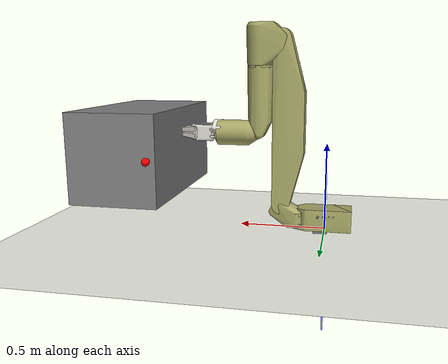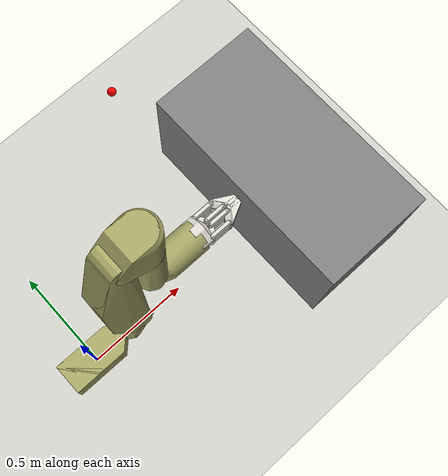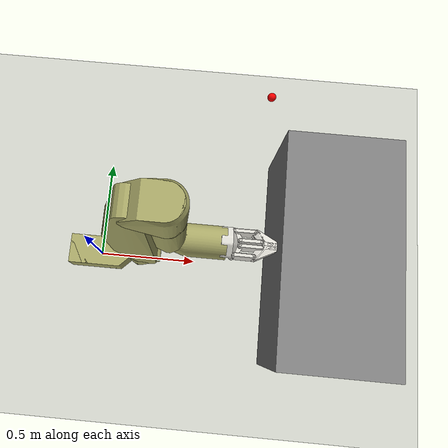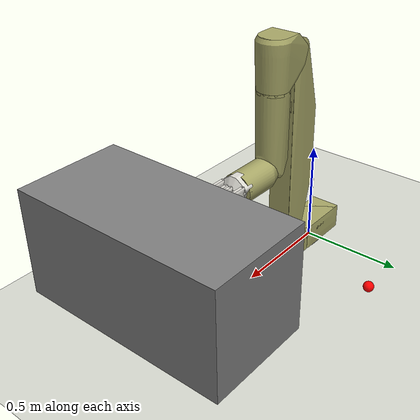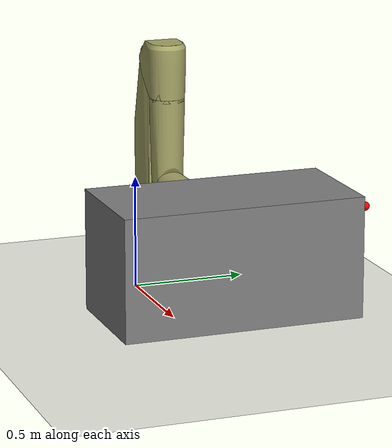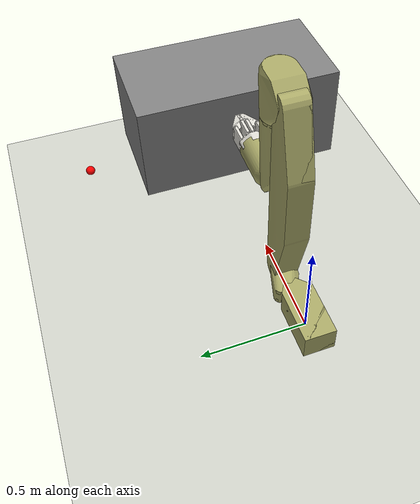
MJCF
<mujoco>

	<include file="shared.xml"></include>
    <include file="actuator.xml" />

	<worldbody>
		<geom name="floor0" pos="0.8 0.75 0" size="1.85 1.7 1.5" type="plane" condim="3" ></geom>
		<body name="floor0" pos="0.8 0.75 0">
			<site name="target0" pos="0 0 0.5" size="0.02 0.02 0.02" rgba="1 0 0 1" type="sphere"></site>
		</body>

		<include file="robot.xml"></include>

		<body pos="1.1 -0. 0.45" name="table0">
			<geom size="0.25 0.5 0.25" type="box" mass="2000" group="0" condim="4"></geom>
			<geom size="0.25 0.5 0.25" type="box" mass="2000" group="1" ></geom>
		</body>

		<camera name="fixed" pos="0 -0.7 0.7" zaxis="0 -1 1" fovy="45" ipd="0.068"/>
        <light directional="true" ambient="0.2 0.2 0.2" diffuse="0.8 0.8 0.8" specular="0.3 0.3 0.3" castshadow="false" pos="0 0 4" dir="0 0 -1" name="light0"></light>

		<body name="object0" pos="0.025 0.025 0.025">
			<joint name="object0:joint" type="free" damping="0.01"></joint>
			<geom size="0.04 0.04 0.04" type="box" contype='0' conaffinity='0' margin='0.001' solimp='0.99 0.99 0.01' solref='0.01 1' condim="4" name="object0_visual"  mass="2" group="1" friction="1 .001 .001" ></geom>
			<geom size="0.04 0.04 0.04" type="box" contype='1' conaffinity='1' margin='0.001' solimp='0.99 0.99 0.01' solref='0.01 1' condim="4" name="object0_collision"  mass="2" group="0" friction="1 .001 .001" ></geom>

			<site name="object0" pos="0 0 0" size="0.02 0.02 0.02" rgba="1 0 0 1" type="sphere"></site>
		</body>

	</worldbody>

</mujoco>

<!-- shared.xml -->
<mujoco model="sia_7f_arm">

    <compiler angle="radian" meshdir="../stls/sia_7f_arm" />

    <option timestep="2e-3"
        iterations="10"
        tolerance="1e-10"
        impratio="300"
        gravity="0 0 -9.81"
        cone="elliptic"
        solver="PGS" />

    <size njmax="600" nconmax="150" nstack="300000"/>

    <asset>
        <mesh name="sia_7f_base_link" file="sia_7f_base_link.STL" />
        <mesh name="sia_7f_base_link_collision" file="sia_7f_base_link_collision.stl" />
        <mesh name="sia_7f_link1" file="sia_7f_link1.STL" />
        <mesh name="sia_7f_link1_collision" file="sia_7f_link1_collision.stl" />
        <mesh name="sia_7f_link2" file="sia_7f_link2.STL" />
        <mesh name="sia_7f_link2_collision" file="sia_7f_link2_collision.stl" />
        <mesh name="sia_7f_link3" file="sia_7f_link3.STL" />
        <mesh name="sia_7f_link3_collision" file="sia_7f_link3_collision.stl" />
        <mesh name="sia_7f_link4" file="sia_7f_link4.STL" />
        <mesh name="sia_7f_link4_collision" file="sia_7f_link4_collision.stl" />
        <mesh name="sia_7f_link5" file="sia_7f_link5.STL" />
        <mesh name="sia_7f_link5_collision" file="sia_7f_link5_collision.stl" />
        <mesh name="sia_7f_gripper" file="sia_7f_gripper.STL" />
        <mesh name="sia_7f_gripper_collision" file="sia_7f_gripper_collision.stl" />
        <mesh name="7f_gripper_left_inner_knuckle" file="7f_gripper_left_inner_knuckle.STL" />
        <mesh name="7f_gripper_left_inner_knuckle_collision" file="7f_gripper_left_inner_knuckle_collision.stl" />
        <mesh name="7f_gripper_left_outer_finger" file="7f_gripper_left_outer_finger.STL" />
        <mesh name="7f_gripper_left_outer_finger_collision" file="7f_gripper_left_outer_finger_collision.stl" />
        <mesh name="7f_gripper_left_inner_finger" file="7f_gripper_left_inner_finger.STL" />
        <mesh name="7f_gripper_left_inner_finger_collision" file="7f_gripper_left_inner_finger_collision.stl" />
        <mesh name="7f_gripper_right_inner_knuckle" file="7f_gripper_right_inner_knuckle.STL" />
        <mesh name="7f_gripper_right_inner_knuckle_collision" file="7f_gripper_right_inner_knuckle_collision.stl" />
        <mesh name="7f_gripper_right_outer_finger" file="7f_gripper_right_outer_finger.STL" />
        <mesh name="7f_gripper_right_outer_finger_collision" file="7f_gripper_right_outer_finger_collision.stl" />
        <mesh name="7f_gripper_right_inner_finger" file="7f_gripper_right_inner_finger.STL" />
        <mesh name="7f_gripper_right_inner_finger_collision" file="7f_gripper_right_inner_finger_collision.stl" />
    </asset>

    <visual>
        <map fogstart="3" fogend="5" force="0.1" znear="0.1"/>
        <quality shadowsize="2048" offsamples="8"/>
        <global offwidth="800" offheight="800"/>
    </visual>

    <default>
        <!-- for collision detection -->
        <default class="GRIPPER">
            <joint armature="0.001" damping='1.0'/>
            <geom rgba="0.863 0.855 0.824 1.0" contype='1' conaffinity='1' margin="0.001" solimp="0.99 0.99 0.01" solref="0.01 1" group="0" condim="4" type='mesh'/>
            <!-- for visualization, no colision detection -->
        </default>

        <default class="ARM">
            <joint armature="0.001" damping='1.0'/>
            <geom rgba="0.658824 0.654902 0.403922 1" contype='1' conaffinity='1' margin="0.001" solimp="0.99 0.99 0.01" solref="0.01 1" group="0" condim="4" type='mesh'/>
            <!-- for visualization, no colision detection -->
        </default>
    </default>

    <equality>
        <weld body2="gripper_r:mocap" body1="r_gripper_palm_link" solimp="0.9 0.95 0.001" solref="0.02 1"></weld>
    </equality>

    <equality>
        <connect body1="7f_gripper_left_inner_knuckle" body2="7f_gripper_left_inner_finger" anchor="0. -0.09 0."/>
        <connect body1="7f_gripper_right_inner_knuckle" body2="7f_gripper_right_inner_finger" anchor="0. -0.09 0."/>
    </equality>

    <contact>
        <exclude body1="r_gripper_palm_link" body2="7f_gripper_left_inner_knuckle"/>
        <exclude body1="r_gripper_palm_link" body2="7f_gripper_left_outer_finger"/>
        <exclude body1="r_gripper_palm_link" body2="7f_gripper_right_inner_knuckle"/>
        <exclude body1="r_gripper_palm_link" body2="7f_gripper_right_outer_finger"/>
        <exclude body1="r_gripper_palm_link" body2="7f_gripper_left_inner_finger"/>
        <exclude body1="r_gripper_palm_link" body2="7f_gripper_right_inner_finger"/>
        <exclude body1="7f_gripper_left_outer_finger" body2="7f_gripper_left_inner_finger"/>
        <exclude body1="7f_gripper_right_outer_finger" body2="7f_gripper_right_inner_finger"/>
        <exclude body1="7f_gripper_left_inner_knuckle" body2="7f_gripper_left_inner_finger"/>
        <exclude body1="7f_gripper_right_inner_knuckle" body2="7f_gripper_right_inner_finger"/>

        <exclude body1="sia_7f_base_link" body2="sia_7f_link1" />
        <exclude body1="sia_7f_link1" body2="sia_7f_link2" />
        <exclude body1="sia_7f_link2" body2="sia_7f_link3" />
        <exclude body1="sia_7f_link3" body2="sia_7f_link4" />
        <exclude body1="sia_7f_link4" body2="sia_7f_link5" />
        <exclude body1="sia_7f_link5" body2="r_gripper_palm_link" />
    </contact>

</mujoco>

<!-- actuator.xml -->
<mujoco>
  <actuator>

        <position ctrllimited="true" ctrlrange="-1.57 1.57" joint="7f_gripper_left_inner_knuckle_joint" kp="10" name="left_inner_knuckle_joint" forcelimited="true" forcerange="-20 20"/>
        <position ctrllimited="true" ctrlrange="-1.57 1.5707" joint="sia_7f_finger_joint" kp="10" name="sia_7f_finger_joint" forcelimited="true" forcerange="-20 20"/>
        <position ctrllimited="true" ctrlrange="-1.57 1.5707" joint="7f_gripper_left_inner_finger_joint" kp="10" name="left_inner_finger_joint" forcelimited="true" forcerange="-20 20"/>

        <position ctrllimited="true" ctrlrange="-1.57 1.5707" joint="7f_gripper_right_inner_knuckle_joint" kp="10" name="right_inner_knuckle_joint" forcelimited="true" forcerange="-20 20"/>
        <position ctrllimited="true" ctrlrange="-1.57 1.5707" joint="7f_gripper_right_outer_finger_joint" kp="10" name="right_outer_finger_joint" forcelimited="true" forcerange="-20 20"/>
        <position ctrllimited="true" ctrlrange="-1.57 1.5707" joint="7f_gripper_right_inner_finger_joint" kp="10" name="right_inner_finger_joint" forcelimited="true" forcerange="-20 20"/>

    </actuator>
</mujoco>

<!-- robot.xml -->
<mujoco model="sia_7f_arm">

	<body mocap="true" name="gripper_r:mocap" pos="0 0 0" >
		<geom conaffinity="0" contype="0" pos="0 0 -0.15" rgba="0.0 0.5 0.0 0.5" size="0.005 0.005 0.005" type="box" group="1"></geom>
		<geom conaffinity="0" contype="0" pos="0 0 -0.15" rgba="1.0 0.0 0.0 0.5" size="0.5 0.005 0.005" type="box" group="1"></geom>
		<geom conaffinity="0" contype="0" pos="0 0 -0.15" rgba="0.0 1.0 0.0 0.5" size="0.005 0.5 0.005" type="box" group="1"></geom>
		<geom conaffinity="0" contype="0" pos="0 0 -0.15" rgba="0.0 0.0 1.0 0.5" size="0.005 0.005 0.5" type="box" group="1"></geom>
	</body>

    <body name="sia_7f_base_link" quat="0.707 0 0 -0.707" childclass="ARM">

    	<joint armature="0.0001" axis="1 0 0" damping="1e+11" name="robot0:slide0" pos="0 0 0" type="slide"></joint>
		<joint armature="0.0001" axis="0 1 0" damping="1e+11" name="robot0:slide1" pos="0 0 0" type="slide"></joint>
		<joint armature="0.0001" axis="0 0 1" damping="1e+11" name="robot0:slide2" pos="0 0 0" type="slide"></joint>
		<inertial diaginertia="1.2869 1.2236 0.9868" mass="70.1294" pos="-0.0036 0 0.0014" quat="0.7605 -0.0133 -0.0061 0.6491"></inertial>

        <geom type="mesh" rgba="0.658824 0.654902 0.403922 1" contype='0' conaffinity='0' group="1" mesh="sia_7f_base_link" />
        <geom type="mesh" group="0" rgba="0.658824 0.654902 0.403922 1" mesh="sia_7f_base_link_collision" />
        <body name="sia_7f_link1" pos="-0.01372 0.16593 0.063">
            <inertial pos="-0.00477249 0.0548648 0.0175766" quat="0.434914 0.713885 -0.514847 0.190133" mass="2.47722" diaginertia="0.009148 0.0085994 0.00483567" />
            <joint name="sia_7f_joint1" pos="0 0 0" axis="0 0 1" limited="true" range="-1 1" />
            <geom type="mesh" rgba="0.658824 0.654902 0.403922 1" contype='0' conaffinity='0' group="1" mesh="sia_7f_link1" />
            <geom type="mesh" group="0" mesh="sia_7f_link1_collision" />
            <body name="sia_7f_link2" pos="0 0.0925 0.0785" quat="0.707105 0 0.707108 0">
                <inertial pos="-0.476597 -0.0343272 0.00067143" quat="0.00151137 0.707106 0.000865133 0.707105" mass="20.0356" diaginertia="1.30077 1.27051 0.102519" />
                <joint name="sia_7f_joint2" pos="0 0 0" axis="0 0 1" limited="true" range="-2 0" />
                <geom type="mesh" rgba="0.658824 0.654902 0.403922 1" contype='0' conaffinity='0' group="1" mesh="sia_7f_link2" />
                <geom type="mesh" group="0" mesh="sia_7f_link2_collision" />
                <body name="sia_7f_link3" pos="-0.95 0 0" quat="-3.67321e-06 -1 0 0">
                    <inertial pos="0.0439931 -0.114053 -0.000160934" quat="0.0582061 0.70445 -0.0448606 0.705938" mass="14.7885" diaginertia="0.102835 0.0892112 0.0615947" />
                    <joint name="sia_7f_joint3" pos="0 0 0" axis="0 0 -1" limited="true" range="0 2" />
                    <geom type="mesh" rgba="0.658824 0.654902 0.403922 1" contype='0' conaffinity='0' group="1" mesh="sia_7f_link3" />
                    <geom type="mesh" group="0" mesh="sia_7f_link3_collision" />
                    <body name="sia_7f_link4" pos="0.139 -0.127 0" quat="-2.59734e-06 0.707105 -2.59735e-06 -0.707108">
                        <inertial pos="-5.33239e-05 0.00165079 -0.194398" quat="0.707233 -0.00722231 0.00779547 0.7069" mass="4.55298" diaginertia="0.0755215 0.0741948 0.0141235" />
                        <joint name="sia_7f_joint4" pos="0 0 0" axis="0 0 1" limited="true" range="-1.5 1.5" />
                        <geom type="mesh" rgba="0.658824 0.654902 0.403922 1" contype='0' conaffinity='0' group="1" mesh="sia_7f_link4" />
                        <geom type="mesh" group="0" mesh="sia_7f_link4_collision" />
                        <body name="sia_7f_link5" pos="-0.0005 0 -0.396" quat="0.707105 0 0.707108 0">
                            <inertial pos="-0.000417408 0.14142 0.0005" quat="0.706955 0.706955 -0.0146263 -0.0146263" mass="14.6515" diaginertia="0.0511223 0.0509324 0.0366645" />
                            <joint name="sia_7f_joint5" pos="0 0 0" axis="0 0 1" limited="true" range="-2 0" />
                            <geom type="mesh" rgba="0.658824 0.654902 0.403922 1" contype='0' conaffinity='0' group="1" mesh="sia_7f_link5" />
                            <geom type="mesh" group="0" mesh="sia_7f_link5_collision" />

                            <body name="r_gripper_palm_link" pos="0 0.2471 0.0005" quat="0.499998 0.5 -0.5 0.500002" childclass="GRIPPER">
                                <site name="r_grip_site" pos="0 0 -0.15" size="0.01" rgba="1 0 0 1" type="sphere" group="1"/>
                                <inertial pos="3.26846e-08 0 -0.0226729" quat="0 0.707107 0 0.707107" mass="0.217997" diaginertia="0.00032971 0.000281938 0.000209321" />
                                <joint name="sia_7f_gripper" pos="0 0 0" axis="0 0 -1" limited="true" range="-2 2" />
                                <geom type="mesh" rgba="0.863 0.855 0.824 1.0" contype='0' conaffinity='0' group="1" mesh="sia_7f_gripper" />
                                <geom type="mesh" group="0" mesh="sia_7f_gripper_collision" />

                                <body name="7f_gripper_left_inner_knuckle" pos="0.0115 0 -0.058" quat="0.707105 0.707108 0 0">
                                    <inertial pos="0.00025 -0.0449993 0" quat="0.707104 0.707104 0.00196419 0.00196419" mass="0.0575818" diaginertia="0.000136036 8.47532e-05 5.36227e-05" />
                                    <joint name="7f_gripper_left_inner_knuckle_joint" pos="0 0 0" axis="0 0 -1" limited="true" range="-1 1" />
                                    <geom type="mesh" rgba="0.863 0.855 0.824 1.0" contype='0' conaffinity='0' group="1" mesh="7f_gripper_left_inner_knuckle" />
                                    <geom type="mesh" group="0" mesh="7f_gripper_left_inner_knuckle_collision" />
                                </body>

                                <body name="7f_gripper_left_outer_finger" pos="0.0525 0 -0.028" quat="0.707105 0.707108 0 0">
                                    <inertial pos="0.00025 -0.0449993 0" quat="0.707104 0.707104 0.00196419 0.00196419" mass="0.100689" diaginertia="0.000179129 0.000126093 5.76745e-05" />
                                    <joint name="sia_7f_finger_joint" pos="0 0 0" axis="0 0 -1" limited="true" range="-1 0" />
                                    <geom type="mesh" rgba="0.863 0.855 0.824 1.0" contype='0' conaffinity='0' group="1" mesh="7f_gripper_left_outer_finger" />
                                    <geom type="mesh" group="0" mesh="7f_gripper_left_outer_finger_collision" />
                                    <body name="7f_gripper_left_inner_finger" pos="0.0005 -0.089999 0" quat="-3.67321e-06 1 0 0">
                                        <inertial pos="-0.0308058 0.0521402 9.784e-09" quat="0.69201 0.69201 0.145333 0.145333" mass="0.124285" diaginertia="0.000192554 0.000168251 5.5144e-05" />
                                        <joint name="7f_gripper_left_inner_finger_joint" pos="0 0 0" axis="0 0 1" limited="true" range="-1 1" />
                                        <geom type="mesh" rgba="0.863 0.855 0.824 1.0" contype='0' conaffinity='0' group="1" mesh="7f_gripper_left_inner_finger" />
                                        <geom type="mesh" group="0" mesh="7f_gripper_left_inner_finger_collision" />
                                    </body>
                                </body>

                                <body name="7f_gripper_right_inner_knuckle" pos="-0.0115 0 -0.058" quat="0.707105 0.707108 0 0">
                                    <inertial pos="-0.00025 -0.0449993 0" quat="0.707104 0.707104 -0.00196419 -0.00196419" mass="0.0575818" diaginertia="0.000136036 8.47532e-05 5.36227e-05" />
                                    <joint name="7f_gripper_right_inner_knuckle_joint" pos="0 0 0" axis="0 0 -1" limited="true" range="-1 1" />
                                    <geom type="mesh" rgba="0.863 0.855 0.824 1.0" contype='0' conaffinity='0' group="1" mesh="7f_gripper_right_inner_knuckle" />
                                    <geom type="mesh" group="0" mesh="7f_gripper_right_inner_knuckle_collision" />
                                </body>

                                <body name="7f_gripper_right_outer_finger" pos="-0.0525 0 -0.028" quat="0.707105 0.707108 0 0">
                                    <inertial pos="-0.00025 -0.0449993 0" quat="0.707104 0.707104 -0.00196419 -0.00196419" mass="0.100689" diaginertia="0.000179129 0.000126093 5.76745e-05" />
                                    <joint name="7f_gripper_right_outer_finger_joint" pos="0 0 0" axis="0 0 -1" limited="true" range="-1 1" />
                                    <geom type="mesh" rgba="0.863 0.855 0.824 1.0" contype='0' conaffinity='0' group="1" mesh="7f_gripper_right_outer_finger" />
                                    <geom type="mesh" group="0" mesh="7f_gripper_right_outer_finger_collision" />
                                    <body name="7f_gripper_right_inner_finger" pos="-0.0005 -0.089999 0">
                                        <inertial pos="0.0308058 -0.0521402 9.784e-09" quat="0.69201 0.69201 0.145333 0.145333" mass="0.124285" diaginertia="0.000192554 0.000168251 5.5144e-05" />
                                        <joint name="7f_gripper_right_inner_finger_joint" pos="0 0 0" axis="0 0 -1" limited="true" range="-1 1" />
                                        <geom type="mesh" rgba="0.863 0.855 0.824 1.0" contype='0' conaffinity='0' group="1" mesh="7f_gripper_right_inner_finger" />
                                        <geom type="mesh" group="0" mesh="7f_gripper_right_inner_finger_collision" />
                                    </body>
                                </body>
                            </body>
                        </body>
                    </body>
                </body>
            </body>
        </body>
    </body>
</mujoco>
